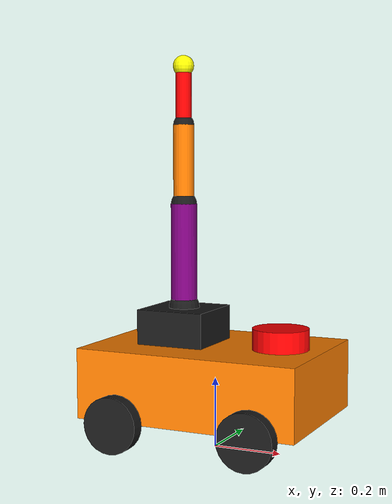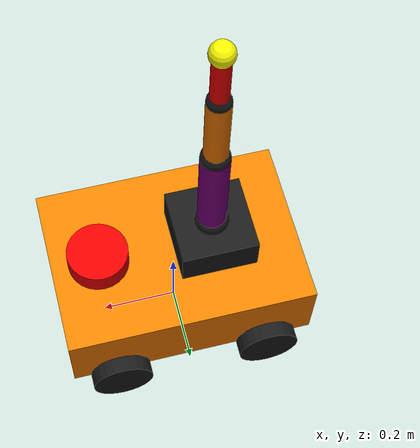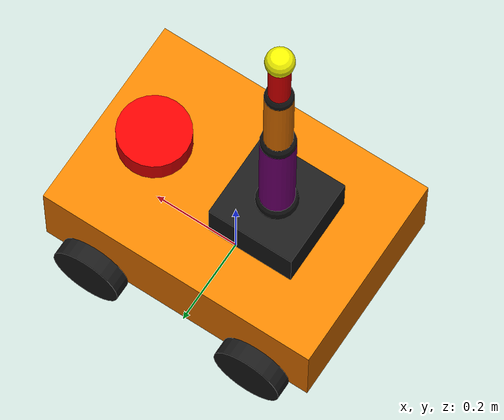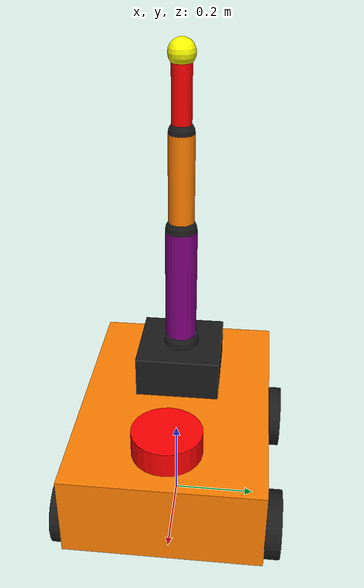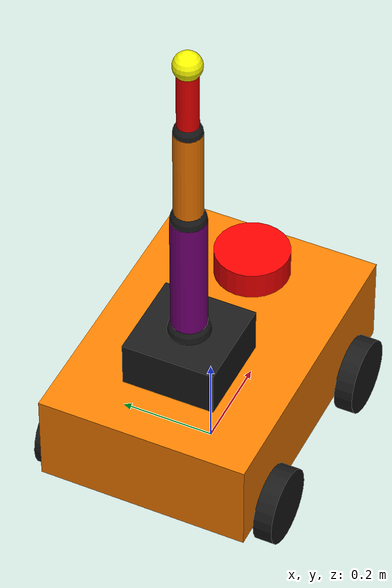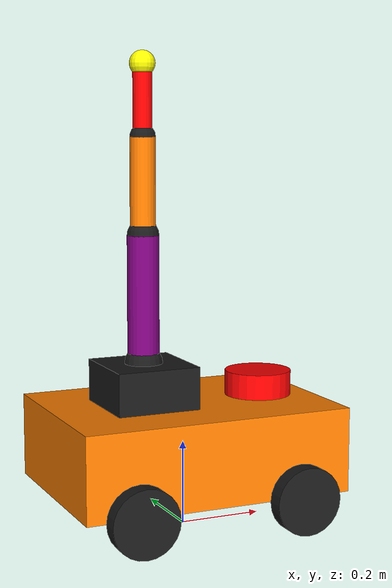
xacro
<?xml version="1.0"?>
<robot xmlns:xacro="http://www.ros.org/wiki/xacro" name="robot_arm">

    <xacro:include filename="common_properties.xacro" />
    <xacro:include filename="mobile_base.xacro" />
    <xacro:include filename="robot_arm_core.xacro" />
    <xacro:include filename="robot_arm_control.xacro" />

</robot>

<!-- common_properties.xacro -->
<robot xmlns:xacro="http://www.ros.org/wiki/xacro">

    <!-- Colors -->
    <material name="grey">
        <color rgba="0.7 0.7 0.7 1"/>
    </material>
    <material name="orange">
        <color rgba="1.0 0.5 0.0 1"/>
    </material>
    <material name="black">
        <color rgba="0.1 0.1 0.1 1"/>
    </material>
    <material name="blue">
        <color rgba="0.0 0.0 0.8 1"/>
    </material>
    <material name="red">
        <color rgba="1.0 0.0 0.0 1"/>
    </material>
    <material name="green">
        <color rgba="0.0 1.0 0.0 1"/>
    </material>
    <material name="yellow">
        <color rgba="1.0 1.0 0.0 1"/>
    </material>
    <material name="purple">
        <color rgba="0.5 0.0 0.5 1"/>
    </material>

    <!-- Inertial Macros -->
    <xacro:macro name="box_inertia" params="m w h d x y z r p y_rot">
        <inertial>
            <origin xyz="${x} ${y} ${z}" rpy="${r} ${p} ${y_rot}"/>
            <mass value="${m}"/>
            <inertia ixx="${(m/12)*(h*h + d*d)}" ixy="0.0" ixz="0.0"
                     iyy="${(m/12)*(w*w + d*d)}" iyz="0.0"
                     izz="${(m/12)*(w*w + h*h)}"/>
        </inertial>
    </xacro:macro>

    <xacro:macro name="cylinder_inertia" params="m r h x y z roll pitch yaw">
        <inertial>
            <origin xyz="${x} ${y} ${z}" rpy="${roll} ${pitch} ${yaw}"/>
            <mass value="${m}"/>
            <inertia ixx="${(m/12)*(3*r*r + h*h)}" ixy="0.0" ixz="0.0"
                     iyy="${(m/12)*(3*r*r + h*h)}" iyz="0.0"
                     izz="${(m/2)*(r*r)}"/>
        </inertial>
    </xacro:macro>

    <xacro:macro name="sphere_inertia" params="m r x y z roll pitch yaw">
        <inertial>
            <origin xyz="${x} ${y} ${z}" rpy="${roll} ${pitch} ${yaw}"/>
            <mass value="${m}"/>
            <inertia ixx="${(2*m/5)*(r*r)}" ixy="0.0" ixz="0.0"
                     iyy="${(2*m/5)*(r*r)}" iyz="0.0"
                     izz="${(2*m/5)*(r*r)}"/>
        </inertial>
    </xacro:macro>

</robot>

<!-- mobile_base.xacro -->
<robot xmlns:xacro="http://www.ros.org/wiki/xacro">

    <!-- Base link footprint for gazebo -->
    <link name="base_footprint"/>
    <joint name="base_footprint_joint" type="fixed">
        <parent link="base_footprint"/>
        <child link="base_link"/>
        <origin xyz="0 0 0.1" rpy="0 0 0"/>
    </joint>

    <!-- Main Chassis -->
    <link name="base_link">
        <visual>
            <origin xyz="0 0 0.1" rpy="0 0 0"/>
            <geometry>
                <box size="0.65 0.45 0.2"/>
            </geometry>
            <material name="orange"/>
        </visual>
        <collision>
            <origin xyz="0 0 0.1" rpy="0 0 0"/>
            <geometry>
                <box size="0.65 0.45 0.2"/>
            </geometry>
        </collision>
        <xacro:box_inertia m="5.0" w="0.45" h="0.65" d="0.2"
                           x="0" y="0" z="0.1" r="0" p="0" y_rot="0"/>
    </link>

    <gazebo reference="base_link">
        <material>Gazebo/Orange</material>
    </gazebo>

    <!-- Wheels Macro -->
    <xacro:macro name="wheel" params="prefix x_reflect y_reflect">
        <link name="${prefix}_wheel">
            <visual>
                <geometry>
                    <cylinder radius="0.08" length="0.04" />
                </geometry>
                <origin xyz="0 0 0" rpy="1.57079632679 0 0" />
                <material name="black" />
            </visual>
            <collision>
                <geometry>
                    <cylinder radius="0.08" length="0.04" />
                </geometry>
                <origin xyz="0 0 0" rpy="1.57079632679 0 0" />
            </collision>
            <xacro:cylinder_inertia m="0.5" r="0.08" h="0.04"
                                    x="0" y="0" z="0" roll="1.57079632679" pitch="0" yaw="0"/>
        </link>

        <joint name="base_${prefix}_wheel_joint" type="continuous">
            <parent link="base_link" />
            <child link="${prefix}_wheel" />
            <origin xyz="${x_reflect * 0.2} ${y_reflect * 0.245} 0" rpy="0 0 0" />
            <axis xyz="0 1 0" />
        </joint>

        <gazebo reference="${prefix}_wheel">
            <material>Gazebo/Black</material>
            <mu1 value="1.0"/>
            <mu2 value="1.0"/>
        </gazebo>
    </xacro:macro>

    <!-- Instantiate Wheels -->
    <xacro:wheel prefix="front_left" x_reflect="1" y_reflect="1"/>
    <xacro:wheel prefix="front_right" x_reflect="1" y_reflect="-1"/>
    <xacro:wheel prefix="back_left" x_reflect="-1" y_reflect="1"/>
    <xacro:wheel prefix="back_right" x_reflect="-1" y_reflect="-1"/>

    <!-- Lidar -->
    <link name="lidar">
        <visual>
            <geometry>
                <cylinder radius="0.08" length="0.06" />
            </geometry>
            <origin xyz="0 0 0" rpy="0 0 0" />
            <material name="red" />
        </visual>
        <collision>
            <geometry>
                <cylinder radius="0.08" length="0.06" />
            </geometry>
            <origin xyz="0 0 0" rpy="0 0 0" />
        </collision>
        <xacro:cylinder_inertia m="0.2" r="0.08" h="0.06"
                                x="0" y="0" z="0" roll="0" pitch="0" yaw="0"/>
    </link>

    <joint name="base_lidar_joint" type="fixed">
        <parent link="base_link" />
        <child link="lidar" />
        <!-- Placed slightly forward to leave room for the arm -->
        <origin xyz="0.2 0 0.23" rpy="0 0 0" />
    </joint>

    <gazebo reference="lidar">
        <material>Gazebo/Red</material>
    </gazebo>

    <!-- Gazebo Plugin for Skid Steer Drive -->
    <gazebo>
        <plugin name="skid_steer_drive" filename="libgazebo_ros_diff_drive.so">
            <ros>
                <namespace>/</namespace>
            </ros>
            <update_rate>50</update_rate>

            <num_wheel_pairs>2</num_wheel_pairs>

            <left_joint>base_front_left_wheel_joint</left_joint>
            <right_joint>base_front_right_wheel_joint</right_joint>

            <left_joint>base_back_left_wheel_joint</left_joint>
            <right_joint>base_back_right_wheel_joint</right_joint>

            <wheel_separation>0.49</wheel_separation>
            <wheel_separation>0.49</wheel_separation>
            <wheel_diameter>0.16</wheel_diameter>
            <wheel_diameter>0.16</wheel_diameter>

            <max_wheel_torque>20</max_wheel_torque>
            <max_wheel_acceleration>1.0</max_wheel_acceleration>

            <command_topic>cmd_vel</command_topic>
            <odometry_topic>odom</odometry_topic>
            <odometry_frame>odom</odometry_frame>
            <robot_base_frame>base_footprint</robot_base_frame>
            <publish_odom>true</publish_odom>
            <publish_odom_tf>true</publish_odom_tf>
            <publish_wheel_tf>true</publish_wheel_tf>
        </plugin>
    </gazebo>

</robot>

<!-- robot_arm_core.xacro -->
<robot xmlns:xacro="http://www.ros.org/wiki/xacro">

    <joint name="arm_base_joint" type="fixed">
        <parent link="base_link"/>
        <child link="arm_base_link"/>
        <origin xyz="-0.1 0 0.2" rpy="0 0 0"/>
    </joint>

    <!-- ARM BASE LINK -->
    <link name="arm_base_link">
        <visual>
            <origin xyz="0 0 0.05" rpy="0 0 0"/>
            <geometry>
                <box size="0.2 0.2 0.1"/>
            </geometry>
            <material name="black"/>
        </visual>
        <collision>
            <origin xyz="0 0 0.05" rpy="0 0 0"/>
            <geometry>
                <box size="0.2 0.2 0.1"/>
            </geometry>
        </collision>
        <xacro:box_inertia m="1.0" w="0.2" h="0.2" d="0.1"
                                x="0" y="0" z="0.05"
                                r="0" p="0" y_rot="0"/>
    </link>

    <!-- JOINT 1 (Yaw) -->
    <joint name="joint_1" type="revolute">
        <parent link="arm_base_link"/>
        <child link="link_1"/>
        <origin xyz="0 0 0.1" rpy="0 0 0"/>
        <axis xyz="0 0 1"/>
        <limit lower="-3.14159" upper="3.14159" effort="100.0" velocity="1.0"/>
    </joint>

    <!-- LINK 1 -->
    <link name="link_1">
        <visual>
            <origin xyz="0 0 0.15" rpy="0 0 0"/>
            <geometry>
                <cylinder radius="0.0375" length="0.3"/>
            </geometry>
            <material name="purple"/>
        </visual>
        <collision>
            <origin xyz="0 0 0.15" rpy="0 0 0"/>
            <geometry>
                <cylinder radius="0.0375" length="0.3"/>
            </geometry>
        </collision>
        <xacro:cylinder_inertia m="0.5" r="0.0375" h="0.3"
                                x="0" y="0" z="0.15"
                                roll="0" pitch="0" yaw="0"/>
    </link>

    <!-- Sphere for JOINT 1 -->
    <link name="link_1_sphere">
        <visual>
            <origin xyz="0 0 0" rpy="0 0 0"/>
            <geometry>
                <sphere radius="0.045"/>
            </geometry>
            <material name="black"/>
        </visual>
    </link>
    <joint name="link_1_sphere_joint" type="fixed">
        <parent link="link_1"/>
        <child link="link_1_sphere"/>
        <origin xyz="0 0 0" rpy="0 0 0"/>
    </joint>

    <!-- JOINT 2 (Pitch) -->
    <joint name="joint_2" type="revolute">
        <parent link="link_1"/>
        <child link="link_2"/>
        <origin xyz="0 0 0.3" rpy="0 0 0"/>
        <axis xyz="0 1 0"/>
        <limit lower="-1.5708" upper="1.5708" effort="100.0" velocity="1.0"/>
    </joint>

    <!-- LINK 2 -->
    <link name="link_2">
        <visual>
            <origin xyz="0 0 0.1125" rpy="0 0 0"/>
            <geometry>
                <cylinder radius="0.03" length="0.225"/>
            </geometry>
            <material name="orange"/>
        </visual>
        <collision>
            <origin xyz="0 0 0.1125" rpy="0 0 0"/>
            <geometry>
                <cylinder radius="0.03" length="0.225"/>
            </geometry>
        </collision>
        <xacro:cylinder_inertia m="0.4" r="0.03" h="0.225"
                                x="0" y="0" z="0.1125"
                                roll="0" pitch="0" yaw="0"/>
    </link>

    <!-- Sphere for JOINT 2 -->
    <link name="link_2_sphere">
        <visual>
            <origin xyz="0 0 0" rpy="0 0 0"/>
            <geometry>
                <sphere radius="0.0375"/>
            </geometry>
            <material name="black"/>
        </visual>
    </link>
    <joint name="link_2_sphere_joint" type="fixed">
        <parent link="link_2"/>
        <child link="link_2_sphere"/>
        <origin xyz="0 0 0" rpy="0 0 0"/>
    </joint>

    <!-- JOINT 3 (Pitch) -->
    <joint name="joint_3" type="revolute">
        <parent link="link_2"/>
        <child link="link_3"/>
        <origin xyz="0 0 0.225" rpy="0 0 0"/>
        <axis xyz="0 1 0"/>
        <limit lower="-1.5708" upper="1.5708" effort="100.0" velocity="1.0"/>
    </joint>

    <!-- LINK 3 -->
    <link name="link_3">
        <visual>
            <origin xyz="0 0 0.075" rpy="0 0 0"/>
            <geometry>
                <cylinder radius="0.0225" length="0.15"/>
            </geometry>
            <material name="red"/>
        </visual>
        <collision>
            <origin xyz="0 0 0.075" rpy="0 0 0"/>
            <geometry>
                <cylinder radius="0.0225" length="0.15"/>
            </geometry>
        </collision>
        <xacro:cylinder_inertia m="0.2" r="0.0225" h="0.15"
                                x="0" y="0" z="0.075"
                                roll="0" pitch="0" yaw="0"/>
    </link>

    <!-- Sphere for JOINT 3 -->
    <link name="link_3_sphere">
        <visual>
            <origin xyz="0 0 0" rpy="0 0 0"/>
            <geometry>
                <sphere radius="0.03"/>
            </geometry>
            <material name="black"/>
        </visual>
    </link>
    <joint name="link_3_sphere_joint" type="fixed">
        <parent link="link_3"/>
        <child link="link_3_sphere"/>
        <origin xyz="0 0 0" rpy="0 0 0"/>
    </joint>

    <!-- END EFFECTOR JOINT (Fixed) -->
    <joint name="end_effector_joint" type="fixed">
        <parent link="link_3"/>
        <child link="end_effector_link"/>
        <origin xyz="0 0 0.15" rpy="0 0 0"/>
    </joint>

    <!-- END EFFECTOR LINK -->
    <link name="end_effector_link">
        <visual>
            <origin xyz="0 0 0.015" rpy="0 0 0"/>
            <geometry>
                <sphere radius="0.03"/>
            </geometry>
            <material name="yellow"/>
        </visual>
        <collision>
            <origin xyz="0 0 0.015" rpy="0 0 0"/>
            <geometry>
                <sphere radius="0.03"/>
            </geometry>
        </collision>
        <xacro:sphere_inertia m="0.1" r="0.03"
                              x="0" y="0" z="0.015"
                              roll="0" pitch="0" yaw="0"/>
    </link>

</robot>
